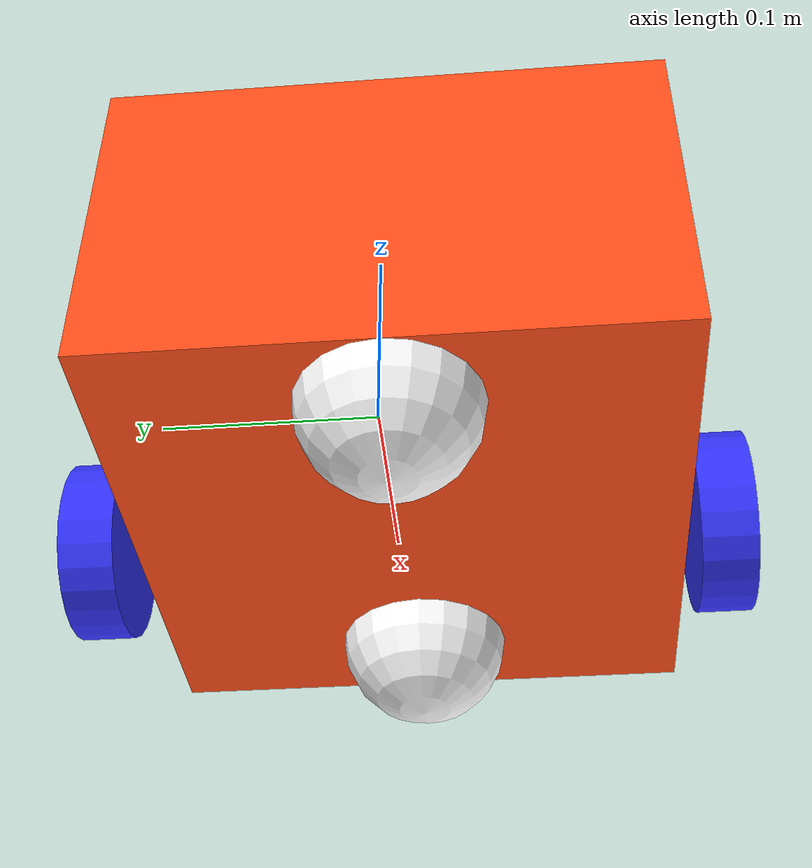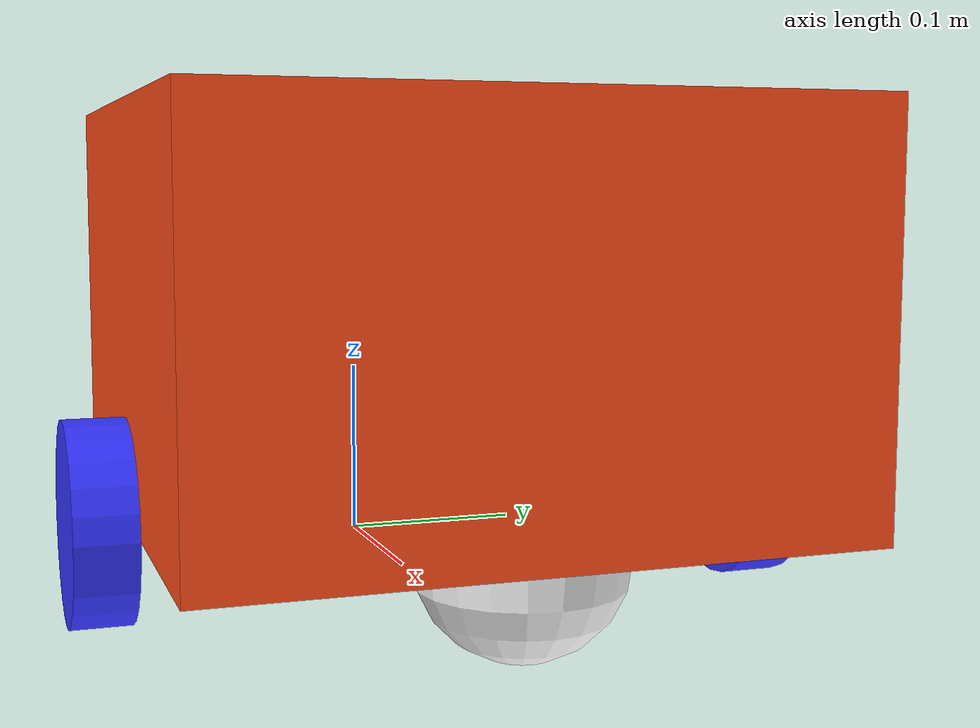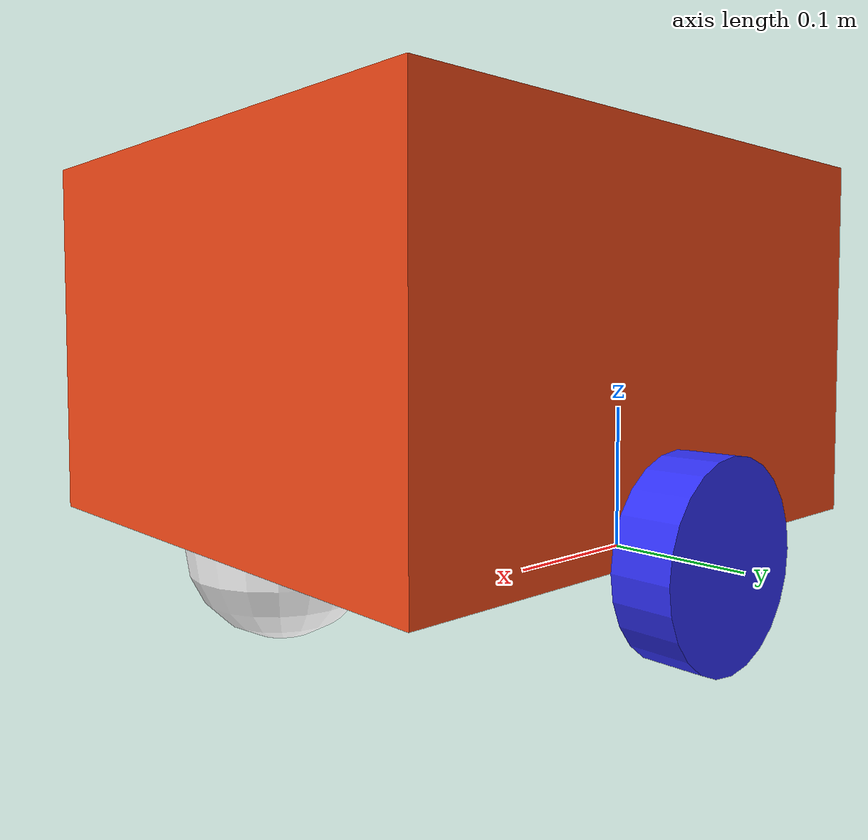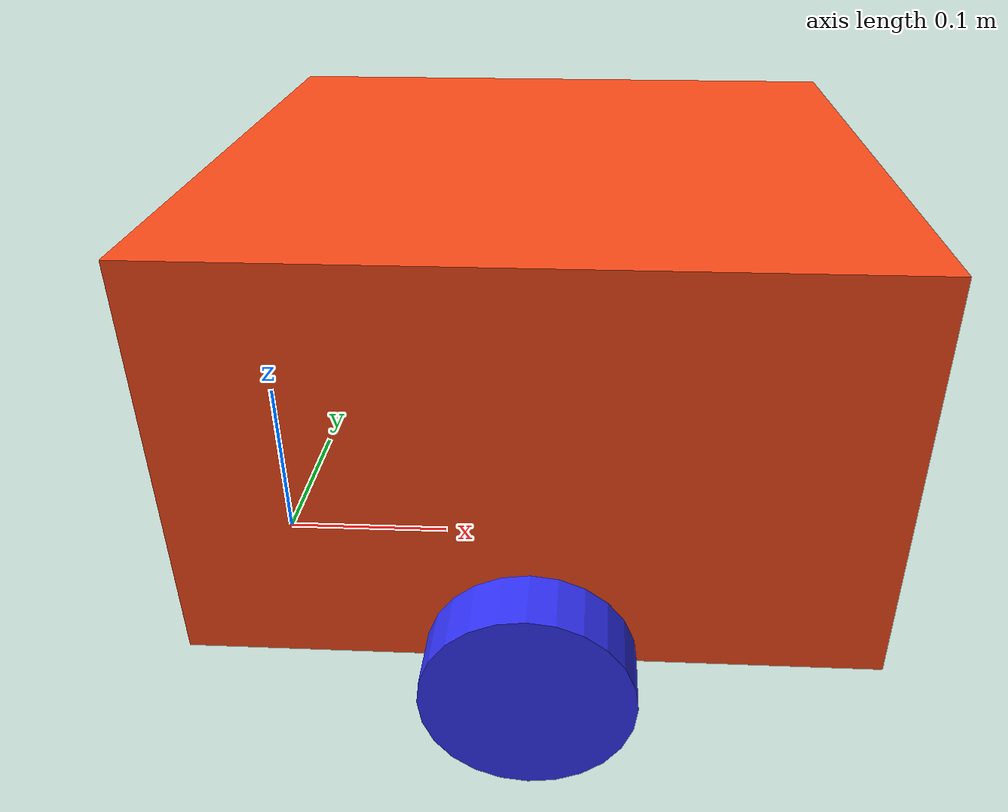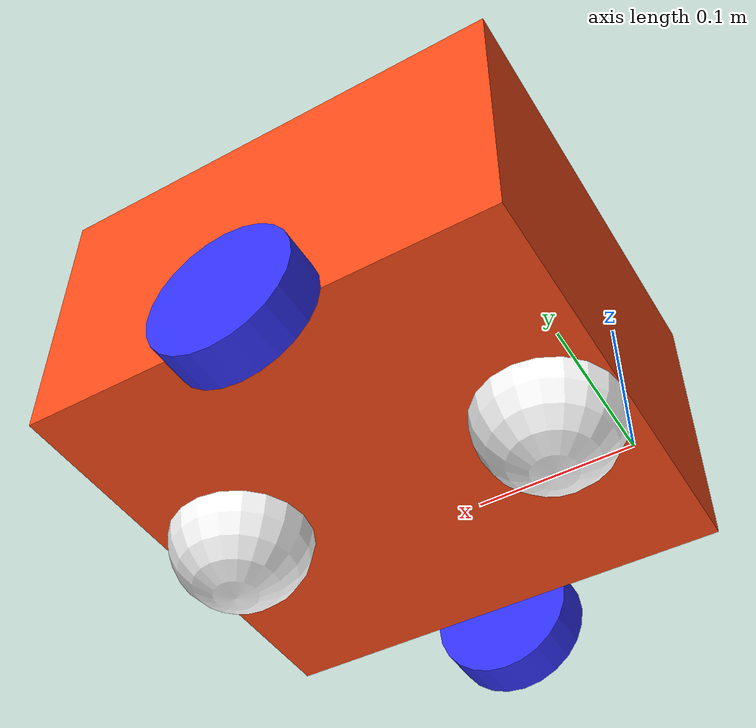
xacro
<?xml version="1.0"?>
<robot xmlns:xacro="http://www.ros.org/wiki/xacro">
	<xacro:include filename="colours.xacro"/>
	<xacro:include filename="inertial_macros.xacro"/>

    <xacro:property name="chassis_length" value="0.330"/>
    <xacro:property name="chassis_width" value="0.315"/>
    <xacro:property name="chassis_height" value="0.2"/>
    <xacro:property name="chassis_mass" value="1.0"/>
	<xacro:property name="chassis_origin_x" value="${(chassis_length/2)}"/>
	<xacro:property name="chassis_origin_y" value="0.0"/>
	<xacro:property name="chassis_origin_z" value="${(chassis_height/2 + wheel_radius)}"/>

    <xacro:property name="wheel_radius" value="0.05"/>
    <xacro:property name="wheel_thickness" value="0.03"/>
    <xacro:property name="wheel_mass" value="0.05"/>
	<xacro:property name="wheel_origin_x" value="0.0"/>
	<xacro:property name="wheel_origin_y" value="${(chassis_width/2) + (wheel_thickness/2)}"/>
	<xacro:property name="wheel_origin_z" value="${chassis_height/2}"/>

    <xacro:property name="caster_wheel_radius" value="${wheel_radius}"/>
    <xacro:property name="caster_wheel_mass" value="0.01"/>
	<xacro:property name="caster_wheel_origin_x" value="${(chassis_length/2)-caster_wheel_radius}"/>
	<xacro:property name="caster_wheel_origin_y" value="0.0"/>
	<xacro:property name="caster_wheel_origin_z" value="${wheel_origin_z}"/>

	<xacro:property name="mu" value="0.1"/>

<!-- BASE LINK-->
	<link name="base_link">

	</link>

	<joint name="chassis_joint" type="fixed">
		<parent link="base_link"/>
		<child link="chassis"/>
		<origin xyz="${chassis_origin_x} ${chassis_origin_y} ${chassis_origin_z}"/>
	</joint>

    <!-- BASE_FOOTPRINT LINK -->

    <joint name="base_footprint_joint" type="fixed">
        <parent link="base_link"/>
        <child link="base_footprint"/>
        <origin xyz="0 0 0" rpy="0 0 0"/>
    </joint>

    <link name="base_footprint">
    </link>

<!-- CHASSIS-->
	<link name="chassis">
		<visual>
			<origin xyz="0 0 0" rpy="0 0 0"/>
			<geometry>
				<box size="${chassis_length} ${chassis_width} ${chassis_height}"/>
			</geometry>
			<material name="orange"/>
		</visual>

		<collision>
			<origin xyz="0 0 0" rpy="0 0 0"/>
			<geometry>
				<box size="${chassis_length} ${chassis_width} ${chassis_height}"/>
			</geometry>
		</collision>

		<xacro:inertial_box mass="${chassis_mass}" x="${chassis_length}" y="${chassis_width}" z="${chassis_height}">
			<origin xyz="0 0 0" rpy="0 0 0"/>
		</xacro:inertial_box>

	</link>

	<gazebo reference="chassis">
		<material>Gazebo/Orange</material>
	</gazebo>

<!-- LEFT WHEEL-->
	<joint name="left_wheel_joint" type="continuous">
		<parent link="chassis"/>
		<child link="left_wheel"/>
		<origin xyz="${wheel_origin_x} ${wheel_origin_y} -${wheel_origin_z}" rpy="-${pi/2} 0 0"/>
		<axis xyz="0 0 1"/>
	</joint>

	<link name="left_wheel">
		<visual>
			<geometry>
				<cylinder radius="${wheel_radius}" length="${wheel_thickness}"/>
			</geometry>
			<material name="blue"/>
		</visual>

		<collision>
			<geometry>
				<sphere radius="${wheel_radius}"/>
			</geometry>
		</collision>

		<xacro:inertial_cylinder mass="${wheel_mass}" length="${wheel_thickness}" radius="${wheel_radius}">
			<origin xyz= "0 0 0" rpy="0 0 0"/>
		</xacro:inertial_cylinder>
	</link>

	<gazebo reference="left_wheel">
		<material>Gazebo/Blue</material>
	</gazebo>

<!-- RIGHT WHEEL-->
	<joint name="right_wheel_joint" type="continuous">
		<parent link="chassis"/>
		<child link="right_wheel"/>
		<origin xyz="${wheel_origin_x} -${wheel_origin_y} -${wheel_origin_z}" rpy="${pi/2} 0 0"/>
		<axis xyz="0 0 -1"/>
	</joint>

	<link name="right_wheel">
		<visual>
			<geometry>
				<cylinder length="${wheel_thickness}" radius="${wheel_radius}"/>
			</geometry>
			<material name="blue"/>
		</visual>

		<collision>
			<geometry>
				<sphere radius="${wheel_radius}"/>
			</geometry>
		</collision>

		<xacro:inertial_cylinder mass="${wheel_mass}" length="${wheel_thickness}" radius="${wheel_radius}">
			<origin xyz="0 0 0" rpy="0 0 0"/>
		</xacro:inertial_cylinder>
	</link>

	<gazebo reference="right_wheel">
		<material>Gazebo/Blue</material>
	</gazebo>

<!-- FRONT CASTER WHEEL-->
	<joint name="front_caster_wheel_joint" type="fixed">
		<parent link="chassis"/>
		<child link="front_caster_wheel"/>
		<origin xyz="${caster_wheel_origin_x} ${caster_wheel_origin_y} -${caster_wheel_origin_z}" rpy="0 0 0"/>
	</joint>

	<link name="front_caster_wheel">
		<visual>
			<geometry>
				<sphere radius="${caster_wheel_radius}"/>
			</geometry>
			<material name="white"/>
		</visual>

		<collision>
			<geometry>
				<sphere radius="${caster_wheel_radius}"/>
			</geometry>
		</collision>

		<xacro:inertial_sphere mass="${caster_wheel_mass}" radius="${caster_wheel_radius}">
			<origin xyz="0 0 0" rpy="0 0 0"/>
		</xacro:inertial_sphere>
	</link>

	<gazebo reference="front_caster_wheel">
		<material>Gazebo/White</material>
		<mu1 value="${mu}"/>
		<mu2 value="${mu}"/>
	</gazebo>

<!-- BACK CASTER WHEEL-->
	<joint name="back_caster_wheel_joint" type="fixed">
		<parent link="chassis"/>
		<child link="back_caster_wheel"/>
		<origin xyz="-${caster_wheel_origin_x} ${caster_wheel_origin_y} -${caster_wheel_origin_z}" rpy="0 0 0"/>
	</joint>

	<link name="back_caster_wheel">
		<visual>
			<geometry>
				<sphere radius="${caster_wheel_radius}"/>
			</geometry>
			<material name="white"/>
		</visual>

		<collision>
			<geometry>
				<sphere radius="${caster_wheel_radius}"/>
			</geometry>
		</collision>

		<xacro:inertial_sphere mass="${caster_wheel_mass}" radius="${caster_wheel_radius}">
			<origin xyz="0 0 0" rpy="0 0 0"/>
		</xacro:inertial_sphere>
	</link>

	<gazebo reference="back_caster_wheel">
		<material>Gazebo/White</material>
		<mu1 value="${mu}"/>
		<mu2 value="${mu}"/>
	</gazebo>

</robot>

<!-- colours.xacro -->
<robot xmlns:xacro="http://www.ros.org/wiki/xacro">

	<material name="white">
		<color rgba="1 1 1 1"/>
	</material>

	<material name="orange">
		<color rgba="1 0.3 0.1 1"/>
	</material>

	<material name="blue">
		<color rgba="0.2 0.2 1 1"/>
	</material>

	<material name="black">
		<color rgba="0 0 0 1"/>
	</material>

	<material name="red">
		<color rgba="1 0 0 1"/>
	</material>

</robot>
